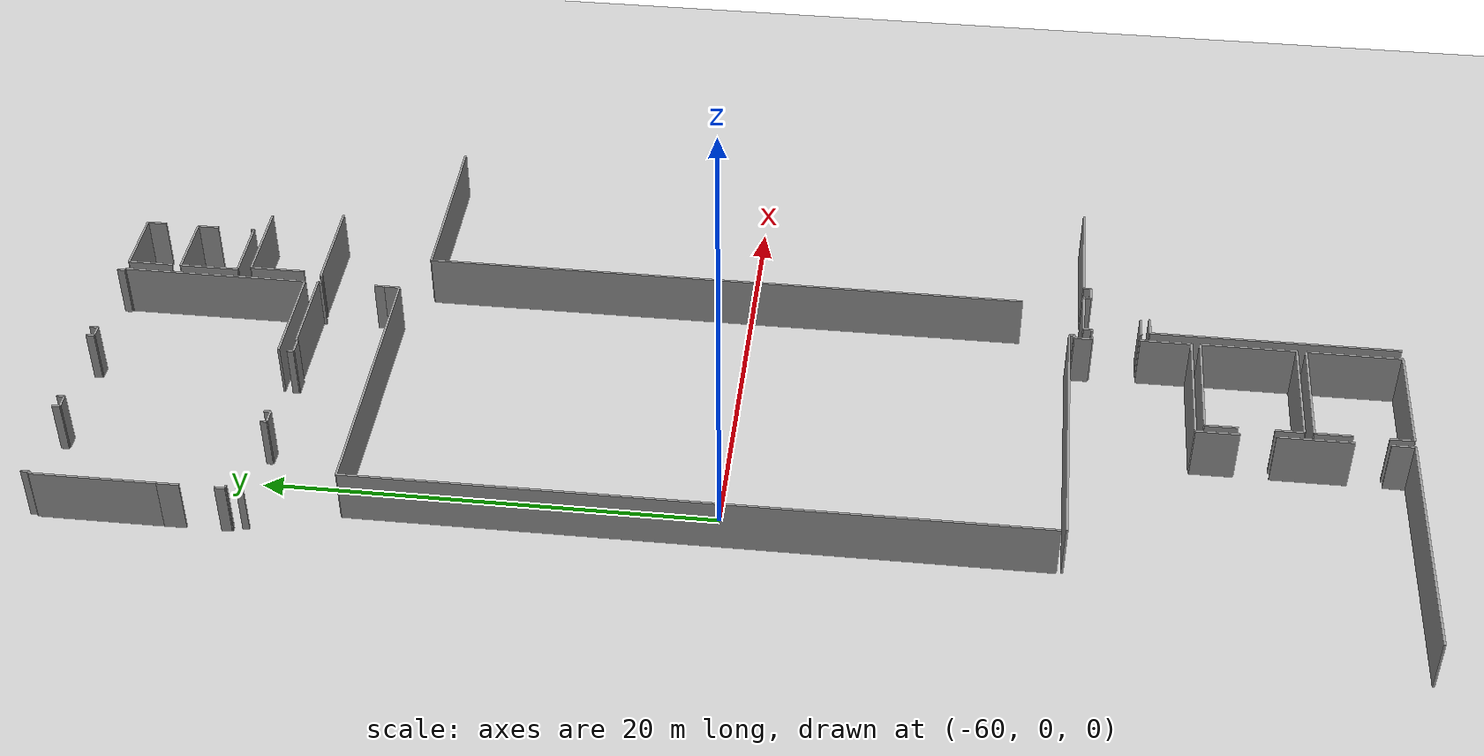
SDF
<sdf version="1.6">
 <world name="default">
  <model name="ground_plane">
   <static>1</static>
   <link name="link">
    <collision name="collision">
     <geometry><plane><normal>0 0 1</normal><size>100 100</size></plane></geometry>
     <surface><friction><ode><mu>100</mu><mu2>50</mu2></ode></friction></surface>
    </collision>
    <visual name="visual">
     <cast_shadows>0</cast_shadows>
     <geometry><plane><normal>0 0 1</normal><size>100 100</size></plane></geometry>
     <material>
      <script><uri>file://media/materials/scripts/gazebo.material</uri><name>Gazebo/Grey</name></script>
     </material>
    </visual>
   </link>
  </model>
  <model name="50010535_PLAN1">
   <static>1</static>
   <link name="Wall_57">
    <collision name="Wall_57_Collision">
     <geometry><box><size>5.55465905987 0.1 2.5</size></box></geometry>
     <pose>2.77732952993 0 1.25 0 0 0</pose>
    </collision>
    <visual name="Wall_57_Visual">
     <pose>2.77732952993 0 1.25 0 0 0</pose>
     <geometry><box><size>5.55465905987 0.1 2.5</size></box></geometry>
     <material>
      <script><uri>file://media/materials/scripts/gazebo.material</uri><name>Gazebo/Grey</name></script>
      <ambient>1 1 1 1</ambient>
     </material>
    </visual>
    <pose>39.6798027992 -5.94423232086 0 0 0 1.57079632679</pose>
   </link>
   <link name="Wall_58">
    <collision name="Wall_58_Collision">
     <geometry><box><size>0.109273647897 0.1 2.5</size></box></geometry>
     <pose>0.0546368239487 0 1.25 0 0 0</pose>
    </collision>
    <visual name="Wall_58_Visual">
     <pose>0.0546368239487 0 1.25 0 0 0</pose>
     <geometry><box><size>0.109273647897 0.1 2.5</size></box></geometry>
     <material>
      <script><uri>file://media/materials/scripts/gazebo.material</uri><name>Gazebo/Grey</name></script>
      <ambient>1 1 1 1</ambient>
     </material>
    </visual>
    <pose>39.6798027992 -0.389573260992 0 0 0 0.0</pose>
   </link>
   <link name="Wall_59">
    <collision name="Wall_59_Collision">
     <geometry><box><size>0.37534227429 0.1 2.5</size></box></geometry>
     <pose>0.187671137145 0 1.25 0 0 0</pose>
    </collision>
    <visual name="Wall_59_Visual">
     <pose>0.187671137145 0 1.25 0 0 0</pose>
     <geometry><box><size>0.37534227429 0.1 2.5</size></box></geometry>
     <material>
      <script><uri>file://media/materials/scripts/gazebo.material</uri><name>Gazebo/Grey</name></script>
      <ambient>1 1 1 1</ambient>
     </material>
    </visual>
    <pose>39.7890764471 -0.389573260992 0 0 0 1.57079632679</pose>
   </link>
   <link name="Wall_60">
    <collision name="Wall_60_Collision">
     <geometry><box><size>0.359840663774 0.1 2.5</size></box></geometry>
     <pose>0.179920331887 0 1.25 0 0 0</pose>
    </collision>
    <visual name="Wall_60_Visual">
     <pose>0.179920331887 0 1.25 0 0 0</pose>
     <geometry><box><size>0.359840663774 0.1 2.5</size></box></geometry>
     <material>
      <script><uri>file://media/materials/scripts/gazebo.material</uri><name>Gazebo/Grey</name></script>
      <ambient>1 1 1 1</ambient>
     </material>
    </visual>
    <pose>43.9872175244 -0.0142309867029 0 0 0 -1.57079632679</pose>
   </link>
   <link name="Wall_61">
    <collision name="Wall_61_Collision">
     <geometry><box><size>0.657420760722 0.1 2.5</size></box></geometry>
     <pose>0.328710380361 0 1.25 0 0 0</pose>
    </collision>
    <visual name="Wall_61_Visual">
     <pose>0.328710380361 0 1.25 0 0 0</pose>
     <geometry><box><size>0.657420760722 0.1 2.5</size></box></geometry>
     <material>
      <script><uri>file://media/materials/scripts/gazebo.material</uri><name>Gazebo/Grey</name></script>
      <ambient>1 1 1 1</ambient>
     </material>
    </visual>
    <pose>43.9872175244 -0.374071650477 0 0 0 0.0</pose>
   </link>
   <link name="Wall_62">
    <collision name="Wall_62_Collision">
     <geometry><box><size>0.351962796135 0.1 2.5</size></box></geometry>
     <pose>0.175981398067 0 1.25 0 0 0</pose>
    </collision>
    <visual name="Wall_62_Visual">
     <pose>0.175981398067 0 1.25 0 0 0</pose>
     <geometry><box><size>0.351962796135 0.1 2.5</size></box></geometry>
     <material>
      <script><uri>file://media/materials/scripts/gazebo.material</uri><name>Gazebo/Grey</name></script>
      <ambient>1 1 1 1</ambient>
     </material>
    </visual>
    <pose>44.6446382852 -0.374071650477 0 0 0 1.57079632679</pose>
   </link>
   <link name="Wall_63">
    <collision name="Wall_63_Collision">
     <geometry><box><size>0.377121147627 0.1 2.5</size></box></geometry>
     <pose>0.188560573814 0 1.25 0 0 0</pose>
    </collision>
    <visual name="Wall_63_Visual">
     <pose>0.188560573814 0 1.25 0 0 0</pose>
     <geometry><box><size>0.377121147627 0.1 2.5</size></box></geometry>
     <material>
      <script><uri>file://media/materials/scripts/gazebo.material</uri><name>Gazebo/Grey</name></script>
      <ambient>1 1 1 1</ambient>
     </material>
    </visual>
    <pose>48.8420169882 -0.022108854342 0 0 0 -1.57079632679</pose>
   </link>
   <link name="Wall_64">
    <collision name="Wall_64_Collision">
     <geometry><box><size>0.575592587181 0.1 2.5</size></box></geometry>
     <pose>0.28779629359 0 1.25 0 0 0</pose>
    </collision>
    <visual name="Wall_64_Visual">
     <pose>0.28779629359 0 1.25 0 0 0</pose>
     <geometry><box><size>0.575592587181 0.1 2.5</size></box></geometry>
     <material>
      <script><uri>file://media/materials/scripts/gazebo.material</uri><name>Gazebo/Grey</name></script>
      <ambient>1 1 1 1</ambient>
     </material>
    </visual>
    <pose>48.8420169882 -0.399230001969 0 0 0 0.0</pose>
   </link>
   <link name="Wall_65">
    <collision name="Wall_65_Collision">
     <geometry><box><size>0.373563400952 0.1 2.5</size></box></geometry>
     <pose>0.186781700476 0 1.25 0 0 0</pose>
    </collision>
    <visual name="Wall_65_Visual">
     <pose>0.186781700476 0 1.25 0 0 0</pose>
     <geometry><box><size>0.373563400952 0.1 2.5</size></box></geometry>
     <material>
      <script><uri>file://media/materials/scripts/gazebo.material</uri><name>Gazebo/Grey</name></script>
      <ambient>1 1 1 1</ambient>
     </material>
    </visual>
    <pose>49.4176095754 -0.399230001969 0 0 0 1.57079632679</pose>
   </link>
   <link name="Wall_66">
    <collision name="Wall_66_Collision">
     <geometry><box><size>0.351200421847 0.1 2.5</size></box></geometry>
     <pose>0.175600210924 0 1.25 0 0 0</pose>
    </collision>
    <visual name="Wall_66_Visual">
     <pose>0.175600210924 0 1.25 0 0 0</pose>
     <geometry><box><size>0.351200421847 0.1 2.5</size></box></geometry>
     <material>
      <script><uri>file://media/materials/scripts/gazebo.material</uri><name>Gazebo/Grey</name></script>
      <ambient>1 1 1 1</ambient>
     </material>
    </visual>
    <pose>53.6269321423 -0.0256666010178 0 0 0 -1.57079632679</pose>
   </link>
   <link name="Wall_67">
    <collision name="Wall_67_Collision">
     <geometry><box><size>0.0950426611945 0.1 2.5</size></box></geometry>
     <pose>0.0475213305973 0 1.25 0 0 0</pose>
    </collision>
    <visual name="Wall_67_Visual">
     <pose>0.0475213305973 0 1.25 0 0 0</pose>
     <geometry><box><size>0.0950426611945 0.1 2.5</size></box></geometry>
     <material>
      <script><uri>file://media/materials/scripts/gazebo.material</uri><name>Gazebo/Grey</name></script>
      <ambient>1 1 1 1</ambient>
     </material>
    </visual>
    <pose>53.6269321423 -0.376867022865 0 0 0 0.0</pose>
   </link>
   <link name="Wall_68">
    <collision name="Wall_68_Collision">
     <geometry><box><size>8.54011677033 0.1 2.5</size></box></geometry>
     <pose>4.27005838516 0 1.25 0 0 0</pose>
    </collision>
    <visual name="Wall_68_Visual">
     <pose>4.27005838516 0 1.25 0 0 0</pose>
     <geometry><box><size>8.54011677033 0.1 2.5</size></box></geometry>
     <material>
      <script><uri>file://media/materials/scripts/gazebo.material</uri><name>Gazebo/Grey</name></script>
      <ambient>1 1 1 1</ambient>
     </material>
    </visual>
    <pose>53.7219748035 -0.376867022865 0 0 0 -1.57079632679</pose>
   </link>
   <link name="Wall_69">
    <collision name="Wall_69_Collision">
     <geometry><box><size>4.92570027255 0.1 2.5</size></box></geometry>
     <pose>2.46285013627 0 1.25 0 0 0</pose>
    </collision>
    <visual name="Wall_69_Visual">
     <pose>2.46285013627 0 1.25 0 0 0</pose>
     <geometry><box><size>4.92570027255 0.1 2.5</size></box></geometry>
     <material>
      <script><uri>file://media/materials/scripts/gazebo.material</uri><name>Gazebo/Grey</name></script>
      <ambient>1 1 1 1</ambient>
     </material>
    </visual>
    <pose>53.7219748035 -8.91698379319 0 0 0 3.14159265359</pose>
   </link>
   <link name="Wall_70">
    <collision name="Wall_70_Collision">
     <geometry><box><size>0.166197594709 0.1 2.5</size></box></geometry>
     <pose>0.0830987973546 0 1.25 0 0 0</pose>
    </collision>
    <visual name="Wall_70_Visual">
     <pose>0.0830987973546 0 1.25 0 0 0</pose>
     <geometry><box><size>0.166197594709 0.1 2.5</size></box></geometry>
     <material>
      <script><uri>file://media/materials/scripts/gazebo.material</uri><name>Gazebo/Grey</name></script>
      <ambient>1 1 1 1</ambient>
     </material>
    </visual>
    <pose>39.8531158872 -8.91698379319 0 0 0 3.14159265359</pose>
   </link>
   <link name="Wall_71">
    <collision name="Wall_71_Collision">
     <geometry><box><size>0.466064814521 0.1 2.5</size></box></geometry>
     <pose>0.23303240726 0 1.25 0 0 0</pose>
    </collision>
    <visual name="Wall_71_Visual">
     <pose>0.23303240726 0 1.25 0 0 0</pose>
     <geometry><box><size>0.466064814521 0.1 2.5</size></box></geometry>
     <material>
      <script><uri>file://media/materials/scripts/gazebo.material</uri><name>Gazebo/Grey</name></script>
      <ambient>1 1 1 1</ambient>
     </material>
    </visual>
    <pose>39.6869182925 -8.91698379319 0 0 0 1.57079632679</pose>
   </link>
   <link name="Wall_72">
    <collision name="Wall_72_Collision">
     <geometry><box><size>0.986283870976 0.1 2.5</size></box></geometry>
     <pose>0.493141935488 0 1.25 0 0 0</pose>
    </collision>
    <visual name="Wall_72_Visual">
     <pose>0.493141935488 0 1.25 0 0 0</pose>
     <geometry><box><size>0.986283870976 0.1 2.5</size></box></geometry>
     <material>
      <script><uri>file://media/materials/scripts/gazebo.material</uri><name>Gazebo/Grey</name></script>
      <ambient>1 1 1 1</ambient>
     </material>
    </visual>
    <pose>39.6869182925 -6.93049052432 0 0 0 1.57801083703</pose>
   </link>
   <link name="Wall_103">
    <collision name="Wall_103_Collision">
     <geometry><box><size>0.30571208935 0.1 2.5</size></box></geometry>
     <pose>0.152856044675 0 1.25 0 0 0</pose>
    </collision>
    <visual name="Wall_103_Visual">
     <pose>0.152856044675 0 1.25 0 0 0</pose>
     <geometry><box><size>0.30571208935 0.1 2.5</size></box></geometry>
     <material>
      <script><uri>file://media/materials/scripts/gazebo.material</uri><name>Gazebo/Grey</name></script>
      <ambient>1 1 1 1</ambient>
     </material>
    </visual>
    <pose>39.8897098531 -9.62446713214 0 0 0 1.57079632679</pose>
   </link>
   <link name="Wall_104">
    <collision name="Wall_104_Collision">
     <geometry><box><size>0.289956354072 0.1 2.5</size></box></geometry>
     <pose>0.144978177036 0 1.25 0 0 0</pose>
    </collision>
    <visual name="Wall_104_Visual">
     <pose>0.144978177036 0 1.25 0 0 0</pose>
     <geometry><box><size>0.289956354072 0.1 2.5</size></box></geometry>
     <material>
      <script><uri>file://media/materials/scripts/gazebo.material</uri><name>Gazebo/Grey</name></script>
      <ambient>1 1 1 1</ambient>
     </material>
    </visual>
    <pose>43.9925541445 -9.31875504279 0 0 0 -1.57079632679</pose>
   </link>
   <link name="Wall_105">
    <collision name="Wall_105_Collision">
     <geometry><box><size>0.669618749325 0.1 2.5</size></box></geometry>
     <pose>0.334809374662 0 1.25 0 0 0</pose>
    </collision>
    <visual name="Wall_105_Visual">
     <pose>0.334809374662 0 1.25 0 0 0</pose>
     <geometry><box><size>0.669618749325 0.1 2.5</size></box></geometry>
     <material>
      <script><uri>file://media/materials/scripts/gazebo.material</uri><name>Gazebo/Grey</name></script>
      <ambient>1 1 1 1</ambient>
     </material>
    </visual>
    <pose>43.9925541445 -9.60871139686 0 0 0 0.0</pose>
   </link>
   <link name="Wall_106">
    <collision name="Wall_106_Collision">
     <geometry><box><size>0.289702229309 0.1 2.5</size></box></geometry>
     <pose>0.144851114655 0 1.25 0 0 0</pose>
    </collision>
    <visual name="Wall_106_Visual">
     <pose>0.144851114655 0 1.25 0 0 0</pose>
     <geometry><box><size>0.289702229309 0.1 2.5</size></box></geometry>
     <material>
      <script><uri>file://media/materials/scripts/gazebo.material</uri><name>Gazebo/Grey</name></script>
      <ambient>1 1 1 1</ambient>
     </material>
    </visual>
    <pose>44.6621728938 -9.60871139686 0 0 0 1.57079632679</pose>
   </link>
   <link name="Wall_107">
    <collision name="Wall_107_Collision">
     <geometry><box><size>0.293514100748 0.1 2.5</size></box></geometry>
     <pose>0.146757050374 0 1.25 0 0 0</pose>
    </collision>
    <visual name="Wall_107_Visual">
     <pose>0.146757050374 0 1.25 0 0 0</pose>
     <geometry><box><size>0.293514100748 0.1 2.5</size></box></geometry>
     <material>
      <script><uri>file://media/materials/scripts/gazebo.material</uri><name>Gazebo/Grey</name></script>
      <ambient>1 1 1 1</ambient>
     </material>
    </visual>
    <pose>48.7545980699 -9.31900916755 0 0 0 -1.57079632679</pose>
   </link>
   <link name="Wall_108">
    <collision name="Wall_108_Collision">
     <geometry><box><size>0.734420563776 0.1 2.5</size></box></geometry>
     <pose>0.367210281888 0 1.25 0 0 0</pose>
    </collision>
    <visual name="Wall_108_Visual">
     <pose>0.367210281888 0 1.25 0 0 0</pose>
     <geometry><box><size>0.734420563776 0.1 2.5</size></box></geometry>
     <material>
      <script><uri>file://media/materials/scripts/gazebo.material</uri><name>Gazebo/Grey</name></script>
      <ambient>1 1 1 1</ambient>
     </material>
    </visual>
    <pose>48.7545980699 -9.6125232683 0 0 0 0.0</pose>
   </link>
   <link name="Wall_109">
    <collision name="Wall_109_Collision">
     <geometry><box><size>0.0688678106516 0.1 2.5</size></box></geometry>
     <pose>0.0344339053258 0 1.25 0 0 0</pose>
    </collision>
    <visual name="Wall_109_Visual">
     <pose>0.0344339053258 0 1.25 0 0 0</pose>
     <geometry><box><size>0.0688678106516 0.1 2.5</size></box></geometry>
     <material>
      <script><uri>file://media/materials/scripts/gazebo.material</uri><name>Gazebo/Grey</name></script>
      <ambient>1 1 1 1</ambient>
     </material>
    </visual>
    <pose>49.4890186337 -9.6125232683 0 0 0 1.57079632679</pose>
   </link>
   <link name="Wall_110">
    <collision name="Wall_110_Collision">
     <geometry><box><size>4.26523001468 0.1 2.5</size></box></geometry>
     <pose>2.13261500734 0 1.25 0 0 0</pose>
    </collision>
    <visual name="Wall_110_Visual">
     <pose>2.13261500734 0 1.25 0 0 0</pose>
     <geometry><box><size>4.26523001468 0.1 2.5</size></box></geometry>
     <material>
      <script><uri>file://media/materials/scripts/gazebo.material</uri><name>Gazebo/Grey</name></script>
      <ambient>1 1 1 1</ambient>
     </material>
    </visual>
    <pose>49.4890186337 -9.54365545765 0 0 0 0.0</pose>
   </link>
   <link name="Wall_111">
    <collision name="Wall_111_Collision">
     <geometry><box><size>0.175854335686 0.1 2.5</size></box></geometry>
     <pose>0.087927167843 0 1.25 0 0 0</pose>
    </collision>
    <visual name="Wall_111_Visual">
     <pose>0.087927167843 0 1.25 0 0 0</pose>
     <geometry><box><size>0.175854335686 0.1 2.5</size></box></geometry>
     <material>
      <script><uri>file://media/materials/scripts/gazebo.material</uri><name>Gazebo/Grey</name></script>
      <ambient>1 1 1 1</ambient>
     </material>
    </visual>
    <pose>53.7542486484 -9.54365545765 0 0 0 -1.57079632679</pose>
   </link>
   <link name="Wall_112">
    <collision name="Wall_112_Collision">
     <geometry><box><size>0.461236444032 0.1 2.5</size></box></geometry>
     <pose>0.230618222016 0 1.25 0 0 0</pose>
    </collision>
    <visual name="Wall_112_Visual">
     <pose>0.230618222016 0 1.25 0 0 0</pose>
     <geometry><box><size>0.461236444032 0.1 2.5</size></box></geometry>
     <material>
      <script><uri>file://media/materials/scripts/gazebo.material</uri><name>Gazebo/Grey</name></script>
      <ambient>1 1 1 1</ambient>
     </material>
    </visual>
    <pose>53.7542486484 -12.2015463492 0 0 0 -1.57079632679</pose>
   </link>
   <link name="Wall_113">
    <collision name="Wall_113_Collision">
     <geometry><box><size>0.711295210384 0.1 2.5</size></box></geometry>
     <pose>0.355647605192 0 1.25 0 0 0</pose>
    </collision>
    <visual name="Wall_113_Visual">
     <pose>0.355647605192 0 1.25 0 0 0</pose>
     <geometry><box><size>0.711295210384 0.1 2.5</size></box></geometry>
     <material>
      <script><uri>file://media/materials/scripts/gazebo.material</uri><name>Gazebo/Grey</name></script>
      <ambient>1 1 1 1</ambient>
     </material>
    </visual>
    <pose>53.7542486484 -12.6627827932 0 0 0 -1.57079632679</pose>
   </link>
   <link name="Wall_114">
    <collision name="Wall_114_Collision">
     <geometry><box><size>12.7087793752 0.1 2.5</size></box></geometry>
     <pose>6.35438968762 0 1.25 0 0 0</pose>
    </collision>
    <visual name="Wall_114_Visual">
     <pose>6.35438968762 0 1.25 0 0 0</pose>
     <geometry><box><size>12.7087793752 0.1 2.5</size></box></geometry>
     <material>
      <script><uri>file://media/materials/scripts/gazebo.material</uri><name>Gazebo/Grey</name></script>
      <ambient>1 1 1 1</ambient>
     </material>
    </visual>
    <pose>53.7542486484 -13.3740780036 0 0 0 3.14159265359</pose>
   </link>
   <link name="Wall_115">
    <collision name="Wall_115_Collision">
     <geometry><box><size>30.5673970636 0.1 2.5</size></box></geometry>
     <pose>15.2836985318 0 1.25 0 0 0</pose>
    </collision>
    <visual name="Wall_115_Visual">
     <pose>15.2836985318 0 1.25 0 0 0</pose>
     <geometry><box><size>30.5673970636 0.1 2.5</size></box></geometry>
     <material>
      <script><uri>file://media/materials/scripts/gazebo.material</uri><name>Gazebo/Grey</name></script>
      <ambient>1 1 1 1</ambient>
     </material>
    </visual>
    <pose>41.0454692731 -13.3740780036 0 0 0 -1.57079632679</pose>
   </link>
   <link name="Wall_169">
    <collision name="Wall_169_Collision">
     <geometry><box><size>5.48299587683 0.1 2.5</size></box></geometry>
     <pose>2.74149793841 0 1.25 0 0 0</pose>
    </collision>
    <visual name="Wall_169_Visual">
     <pose>2.74149793841 0 1.25 0 0 0</pose>
     <geometry><box><size>5.48299587683 0.1 2.5</size></box></geometry>
     <material>
      <script><uri>file://media/materials/scripts/gazebo.material</uri><name>Gazebo/Grey</name></script>
      <ambient>1 1 1 1</ambient>
     </material>
    </visual>
    <pose>48.2394871762 -50.0249677579 0 0 0 0.0</pose>
   </link>
   <link name="Wall_170">
    <collision name="Wall_170_Collision">
     <geometry><box><size>4.27819037757 0.1 2.5</size></box></geometry>
     <pose>2.13909518878 0 1.25 0 0 0</pose>
    </collision>
    <visual name="Wall_170_Visual">
     <pose>2.13909518878 0 1.25 0 0 0</pose>
     <geometry><box><size>4.27819037757 0.1 2.5</size></box></geometry>
     <material>
      <script><uri>file://media/materials/scripts/gazebo.material</uri><name>Gazebo/Grey</name></script>
      <ambient>1 1 1 1</ambient>
     </material>
    </visual>
    <pose>53.7224830531 -50.0249677579 0 0 0 -1.57079632679</pose>
   </link>
   <link name="Wall_171">
    <collision name="Wall_171_Collision">
     <geometry><box><size>5.4662236425 0.1 2.5</size></box></geometry>
     <pose>2.73311182125 0 1.25 0 0 0</pose>
    </collision>
    <visual name="Wall_171_Visual">
     <pose>2.73311182125 0 1.25 0 0 0</pose>
     <geometry><box><size>5.4662236425 0.1 2.5</size></box></geometry>
     <material>
      <script><uri>file://media/materials/scripts/gazebo.material</uri><name>Gazebo/Grey</name></script>
      <ambient>1 1 1 1</ambient>
     </material>
    </visual>
    <pose>53.7224830531 -54.3031581355 0 0 0 3.14159265359</pose>
   </link>
   <link name="Wall_172">
    <collision name="Wall_172_Collision">
     <geometry><box><size>1.26249182036 0.1 2.5</size></box></geometry>
     <pose>0.63124591018 0 1.25 0 0 0</pose>
    </collision>
    <visual name="Wall_172_Visual">
     <pose>0.63124591018 0 1.25 0 0 0</pose>
     <geometry><box><size>1.26249182036 0.1 2.5</size></box></geometry>
     <material>
      <script><uri>file://media/materials/scripts/gazebo.material</uri><name>Gazebo/Grey</name></script>
      <ambient>1 1 1 1</ambient>
     </material>
    </visual>
    <pose>48.2562594106 -54.3031581355 0 0 0 1.57079632679</pose>
   </link>
   <link name="Wall_173">
    <collision name="Wall_173_Collision">
     <geometry><box><size>1.45445272504 0.1 2.5</size></box></geometry>
     <pose>0.727226362519 0 1.25 0 0 0</pose>
    </collision>
    <visual name="Wall_173_Visual">
     <pose>0.727226362519 0 1.25 0 0 0</pose>
     <geometry><box><size>1.45445272504 0.1 2.5</size></box></geometry>
     <material>
      <script><uri>file://media/materials/scripts/gazebo.material</uri><name>Gazebo/Grey</name></script>
      <ambient>1 1 1 1</ambient>
     </material>
    </visual>
    <pose>48.2562594106 -51.479323774 0 0 0 1.58232822865</pose>
   </link>
   <link name="Wall_174">
    <collision name="Wall_174_Collision">
     <geometry><box><size>1.05970025984 0.1 2.5</size></box></geometry>
     <pose>0.529850129921 0 1.25 0 0 0</pose>
    </collision>
    <visual name="Wall_174_Visual">
     <pose>0.529850129921 0 1.25 0 0 0</pose>
     <geometry><box><size>1.05970025984 0.1 2.5</size></box></geometry>
     <material>
      <script><uri>file://media/materials/scripts/gazebo.material</uri><name>Gazebo/Grey</name></script>
      <ambient>1 1 1 1</ambient>
     </material>
    </visual>
    <pose>48.245077921 -58.9838821369 0 0 0 1.57079632679</pose>
   </link>
   <link name="Wall_175">
    <collision name="Wall_175_Collision">
     <geometry><box><size>1.67493630998 0.1 2.5</size></box></geometry>
     <pose>0.837468154991 0 1.25 0 0 0</pose>
    </collision>
    <visual name="Wall_175_Visual">
     <pose>0.837468154991 0 1.25 0 0 0</pose>
     <geometry><box><size>1.67493630998 0.1 2.5</size></box></geometry>
     <material>
      <script><uri>file://media/materials/scripts/gazebo.material</uri><name>Gazebo/Grey</name></script>
      <ambient>1 1 1 1</ambient>
     </material>
    </visual>
    <pose>48.245077921 -56.3943508065 0 0 0 1.57079632679</pose>
   </link>
   <link name="Wall_176">
    <collision name="Wall_176_Collision">
     <geometry><box><size>5.46063289772 0.1 2.5</size></box></geometry>
     <pose>2.73031644886 0 1.25 0 0 0</pose>
    </collision>
    <visual name="Wall_176_Visual">
     <pose>2.73031644886 0 1.25 0 0 0</pose>
     <geometry><box><size>5.46063289772 0.1 2.5</size></box></geometry>
     <material>
      <script><uri>file://media/materials/scripts/gazebo.material</uri><name>Gazebo/Grey</name></script>
      <ambient>1 1 1 1</ambient>
     </material>
    </visual>
    <pose>48.245077921 -54.7194144965 0 0 0 0.0</pose>
   </link>
   <link name="Wall_177">
    <collision name="Wall_177_Collision">
     <geometry><box><size>4.26090989371 0.1 2.5</size></box></geometry>
     <pose>2.13045494686 0 1.25 0 0 0</pose>
    </collision>
    <visual name="Wall_177_Visual">
     <pose>2.13045494686 0 1.25 0 0 0</pose>
     <geometry><box><size>4.26090989371 0.1 2.5</size></box></geometry>
     <material>
      <script><uri>file://media/materials/scripts/gazebo.material</uri><name>Gazebo/Grey</name></script>
      <ambient>1 1 1 1</ambient>
     </material>
    </visual>
    <pose>53.7057108187 -54.7194144965 0 0 0 -1.57079632679</pose>
   </link>
   <link name="Wall_178">
    <collision name="Wall_178_Collision">
     <geometry><box><size>5.4606340567 0.1 2.5</size></box></geometry>
     <pose>2.73031702835 0 1.25 0 0 0</pose>
    </collision>
    <visual name="Wall_178_Visual">
     <pose>2.73031702835 0 1.25 0 0 0</pose>
     <geometry><box><size>5.4606340567 0.1 2.5</size></box></geometry>
     <material>
      <script><uri>file://media/materials/scripts/gazebo.material</uri><name>Gazebo/Grey</name></script>
      <ambient>1 1 1 1</ambient>
     </material>
    </visual>
    <pose>53.7057108187 -58.9803243903 0 0 0 -3.14094112725</pose>
   </link>
   <link name="Wall_188">
    <collision name="Wall_188_Collision">
     <geometry><box><size>12.6892117685 0.1 2.5</size></box></geometry>
     <pose>6.34460588426 0 1.25 0 0 0</pose>
    </collision>
    <visual name="Wall_188_Visual">
     <pose>6.34460588426 0 1.25 0 0 0</pose>
     <geometry><box><size>12.6892117685 0.1 2.5</size></box></geometry>
     <material>
      <script><uri>file://media/materials/scripts/gazebo.material</uri><name>Gazebo/Grey</name></script>
      <ambient>1 1 1 1</ambient>
     </material>
    </visual>
    <pose>41.0523306417 -44.1676461059 0 0 0 0.0</pose>
   </link>
   <link name="Wall_189">
    <collision name="Wall_189_Collision">
     <geometry><box><size>0.219817919608 0.1 2.5</size></box></geometry>
     <pose>0.109908959804 0 1.25 0 0 0</pose>
    </collision>
    <visual name="Wall_189_Visual">
     <pose>0.109908959804 0 1.25 0 0 0</pose>
     <geometry><box><size>0.219817919608 0.1 2.5</size></box></geometry>
     <material>
      <script><uri>file://media/materials/scripts/gazebo.material</uri><name>Gazebo/Grey</name></script>
      <ambient>1 1 1 1</ambient>
     </material>
    </visual>
    <pose>53.7415424102 -44.1676461059 0 0 0 -1.57079632679</pose>
   </link>
   <link name="Wall_190">
    <collision name="Wall_190_Collision">
     <geometry><box><size>0.181953329987 0.1 2.5</size></box></geometry>
     <pose>0.0909766649937 0 1.25 0 0 0</pose>
    </collision>
    <visual name="Wall_190_Visual">
     <pose>0.0909766649937 0 1.25 0 0 0</pose>
     <geometry><box><size>0.181953329987 0.1 2.5</size></box></geometry>
     <material>
      <script><uri>file://media/materials/scripts/gazebo.material</uri><name>Gazebo/Grey</name></script>
      <ambient>1 1 1 1</ambient>
     </material>
    </visual>
    <pose>53.7415424102 -44.3874640255 0 0 0 3.14159265359</pose>
   </link>
   <link name="Wall_191">
    <collision name="Wall_191_Collision">
     <geometry><box><size>0.804304873478 0.1 2.5</size></box></geometry>
     <pose>0.402152436739 0 1.25 0 0 0</pose>
    </collision>
    <visual name="Wall_191_Visual">
     <pose>0.402152436739 0 1.25 0 0 0</pose>
     <geometry><box><size>0.804304873478 0.1 2.5</size></box></geometry>
     <material>
      <script><uri>file://media/materials/scripts/gazebo.material</uri><name>Gazebo/Grey</name></script>
      <ambient>1 1 1 1</ambient>
     </material>
    </visual>
    <pose>53.5595890803 -44.3874640255 0 0 0 -1.57079632679</pose>
   </link>
   <link name="Wall_192">
    <collision name="Wall_192_Collision">
     <geometry><box><size>0.147646487043 0.1 2.5</size></box></geometry>
     <pose>0.0738232435214 0 1.25 0 0 0</pose>
    </collision>
    <visual name="Wall_192_Visual">
     <pose>0.0738232435214 0 1.25 0 0 0</pose>
     <geometry><box><size>0.147646487043 0.1 2.5</size></box></geometry>
     <material>
      <script><uri>file://media/materials/scripts/gazebo.material</uri><name>Gazebo/Grey</name></script>
      <ambient>1 1 1 1</ambient>
     </material>
    </visual>
    <pose>53.5595890803 -45.1917688989 0 0 0 0.0</pose>
   </link>
   <link name="Wall_193">
    <collision name="Wall_193_Collision">
     <geometry><box><size>2.28254861724 0.1 2.5</size></box></geometry>
     <pose>1.14127430862 0 1.25 0 0 0</pose>
    </collision>
    <visual name="Wall_193_Visual">
     <pose>1.14127430862 0 1.25 0 0 0</pose>
     <geometry><box><size>2.28254861724 0.1 2.5</size></box></geometry>
     <material>
      <script><uri>file://media/materials/scripts/gazebo.material</uri><name>Gazebo/Grey</name></script>
      <ambient>1 1 1 1</ambient>
     </material>
    </visual>
    <pose>53.7072355673 -47.343951513 0 0 0 -1.57079632679</pose>
   </link>
   <link name="Wall_194">
    <collision name="Wall_194_Collision">
     <geometry><box><size>5.87663513402 0.1 2.5</size></box></geometry>
     <pose>2.93831756701 0 1.25 0 0 0</pose>
    </collision>
    <visual name="Wall_194_Visual">
     <pose>2.93831756701 0 1.25 0 0 0</pose>
     <geometry><box><size>5.87663513402 0.1 2.5</size></box></geometry>
     <material>
      <script><uri>file://media/materials/scripts/gazebo.material</uri><name>Gazebo/Grey</name></script>
      <ambient>1 1 1 1</ambient>
     </material>
    </visual>
    <pose>53.7072355673 -49.6265001302 0 0 0 3.14159265359</pose>
   </link>
   <link name="Wall_195">
    <collision name="Wall_195_Collision">
     <geometry><box><size>1.91787958298 0.1 2.5</size></box></geometry>
     <pose>0.958939791491 0 1.25 0 0 0</pose>
    </collision>
    <visual name="Wall_195_Visual">
     <pose>0.958939791491 0 1.25 0 0 0</pose>
     <geometry><box><size>1.91787958298 0.1 2.5</size></box></geometry>
     <material>
      <script><uri>file://media/materials/scripts/gazebo.material</uri><name>Gazebo/Grey</name></script>
      <ambient>1 1 1 1</ambient>
     </material>
    </visual>
    <pose>47.8306004333 -49.6265001302 0 0 0 -1.57079632679</pose>
   </link>
   <link name="Wall_196">
    <collision name="Wall_196_Collision">
     <geometry><box><size>3.35190561806 0.1 2.5</size></box></geometry>
     <pose>1.67595280903 0 1.25 0 0 0</pose>
    </collision>
    <visual name="Wall_196_Visual">
     <pose>1.67595280903 0 1.25 0 0 0</pose>
     <geometry><box><size>3.35190561806 0.1 2.5</size></box></geometry>
     <material>
      <script><uri>file://media/materials/scripts/gazebo.material</uri><name>Gazebo/Grey</name></script>
      <ambient>1 1 1 1</ambient>
     </material>
    </visual>
    <pose>47.8306004333 -53.0866628971 0 0 0 -1.57079632679</pose>
   </link>
   <link name="Wall_197">
    <collision name="Wall_197_Collision">
     <geometry><box><size>1.02717229024 0.1 2.5</size></box></geometry>
     <pose>0.513586145118 0 1.25 0 0 0</pose>
    </collision>
    <visual name="Wall_197_Visual">
     <pose>0.513586145118 0 1.25 0 0 0</pose>
     <geometry><box><size>1.02717229024 0.1 2.5</size></box></geometry>
     <material>
      <script><uri>file://media/materials/scripts/gazebo.material</uri><name>Gazebo/Grey</name></script>
      <ambient>1 1 1 1</ambient>
     </material>
    </visual>
    <pose>47.8306004333 -57.9602675934 0 0 0 -1.57079632679</pose>
   </link>
   <link name="Wall_198">
    <collision name="Wall_198_Collision">
     <geometry><box><size>11.589382364 0.1 2.5</size></box></geometry>
     <pose>5.79469118199 0 1.25 0 0 0</pose>
    </collision>
    <visual name="Wall_198_Visual">
     <pose>5.79469118199 0 1.25 0 0 0</pose>
     <geometry><box><size>11.589382364 0.1 2.5</size></box></geometry>
     <material>
      <script><uri>file://media/materials/scripts/gazebo.material</uri><name>Gazebo/Grey</name></script>
      <ambient>1 1 1 1</ambient>
     </material>
    </visual>
    <pose>47.8306004333 -58.9874398836 0 0 0 -3.13961918833</pose>
   </link>
   <link name="Wall_199">
    <collision name="Wall_199_Collision">
     <geometry><box><size>2.06018945001 0.1 2.5</size></box></geometry>
     <pose>1.03009472501 0 1.25 0 0 0</pose>
    </collision>
    <visual name="Wall_199_Visual">
     <pose>1.03009472501 0 1.25 0 0 0</pose>
     <geometry><box><size>2.06018945001 0.1 2.5</size></box></geometry>
     <material>
      <script><uri>file://media/materials/scripts/gazebo.material</uri><name>Gazebo/Grey</name></script>
      <ambient>1 1 1 1</ambient>
     </material>
    </visual>
    <pose>54.2624981735 -2.46526432152 0 0 0 1.57079632679</pose>
   </link>
   <link name="Wall_200">
    <collision name="Wall_200_Collision">
     <geometry><box><size>3.04416053061 0.1 2.5</size></box></geometry>
     <pose>1.52208026531 0 1.25 0 0 0</pose>
    </collision>
    <visual name="Wall_200_Visual">
     <pose>1.52208026531 0 1.25 0 0 0</pose>
     <geometry><box><size>3.04416053061 0.1 2.5</size></box></geometry>
     <material>
      <script><uri>file://media/materials/scripts/gazebo.material</uri><name>Gazebo/Grey</name></script>
      <ambient>1 1 1 1</ambient>
     </material>
    </visual>
    <pose>54.2624981735 -0.405074871508 0 0 0 0.0</pose>
   </link>
   <link name="Wall_201">
    <collision name="Wall_201_Collision">
     <geometry><box><size>0.9120537728 0.1 2.5</size></box></geometry>
     <pose>0.4560268864 0 1.25 0 0 0</pose>
    </collision>
    <visual name="Wall_201_Visual">
     <pose>0.4560268864 0 1.25 0 0 0</pose>
     <geometry><box><size>0.9120537728 0.1 2.5</size></box></geometry>
     <material>
      <script><uri>file://media/materials/scripts/gazebo.material</uri><name>Gazebo/Grey</name></script>
      <ambient>1 1 1 1</ambient>
     </material>
    </visual>
    <pose>57.3066587041 -0.405074871508 0 0 0 -1.57079632679</pose>
   </link>
   <link name="Wall_203">
    <collision name="Wall_203_Collision">
     <geometry><box><size>2.7158313374 0.1 2.5</size></box></geometry>
     <pose>1.3579156687 0 1.25 0 0 0</pose>
    </collision>
    <visual name="Wall_203_Visual">
     <pose>1.3579156687 0 1.25 0 0 0</pose>
     <geometry><box><size>2.7158313374 0.1 2.5</size></box></geometry>
     <material>
      <script><uri>file://media/materials/scripts/gazebo.material</uri><name>Gazebo/Grey</name></script>
      <ambient>1 1 1 1</ambient>
     </material>
    </visual>
    <pose>54.2691054173 -5.58820352852 0 0 0 1.57079632679</pose>
   </link>
   <link name="Wall_204">
    <collision name="Wall_204_Collision">
     <geometry><box><size>3.00909131338 0.1 2.5</size></box></geometry>
     <pose>1.50454565669 0 1.25 0 0 0</pose>
    </collision>
    <visual name="Wall_204_Visual">
     <pose>1.50454565669 0 1.25 0 0 0</pose>
     <geometry><box><size>3.00909131338 0.1 2.5</size></box></geometry>
     <material>
      <script><uri>file://media/materials/scripts/gazebo.material</uri><name>Gazebo/Grey</name></script>
      <ambient>1 1 1 1</ambient>
     </material>
    </visual>
    <pose>54.2691054173 -2.87237219113 0 0 0 0.0</pose>
   </link>
   <link name="Wall_205">
    <collision name="Wall_205_Collision">
     <geometry><box><size>0.986258203465 0.1 2.5</size></box></geometry>
     <pose>0.493129101732 0 1.25 0 0 0</pose>
    </collision>
    <visual name="Wall_205_Visual">
     <pose>0.493129101732 0 1.25 0 0 0</pose>
     <geometry><box><size>0.986258203465 0.1 2.5</size></box></geometry>
     <material>
      <script><uri>file://media/materials/scripts/gazebo.material</uri><name>Gazebo/Grey</name></script>
      <ambient>1 1 1 1</ambient>
     </material>
    </visual>
    <pose>57.2781967307 -2.87237219113 0 0 0 -1.57079632679</pose>
   </link>
   <link name="Wall_206">
    <collision name="Wall_206_Collision">
     <geometry><box><size>0.131128377477 0.1 2.5</size></box></geometry>
     <pose>0.0655641887385 0 1.25 0 0 0</pose>
    </collision>
    <visual name="Wall_206_Visual">
     <pose>0.0655641887385 0 1.25 0 0 0</pose>
     <geometry><box><size>0.131128377477 0.1 2.5</size></box></geometry>
     <material>
      <script><uri>file://media/materials/scripts/gazebo.material</uri><name>Gazebo/Grey</name></script>
      <ambient>1 1 1 1</ambient>
     </material>
    </visual>
    <pose>57.2781967307 -5.45402565389 0 0 0 -1.57079632679</pose>
   </link>
   <link name="Wall_207">
    <collision name="Wall_207_Collision">
     <geometry><box><size>3.0090928586 0.1 2.5</size></box></geometry>
     <pose>1.5045464293 0 1.25 0 0 0</pose>
    </collision>
    <visual name="Wall_207_Visual">
     <pose>1.5045464293 0 1.25 0 0 0</pose>
     <geometry><box><size>3.0090928586 0.1 2.5</size></box></geometry>
     <material>
      <script><uri>file://media/materials/scripts/gazebo.material</uri><name>Gazebo/Grey</name></script>
      <ambient>1 1 1 1</ambient>
     </material>
    </visual>
    <pose>57.2781967307 -5.58515403137 0 0 0 -3.14057922602</pose>
   </link>
   <link name="Wall_216">
    <collision name="Wall_216_Collision">
     <geometry><box><size>2.52244239309 0.1 2.5</size></box></geometry>
     <pose>1.26122119655 0 1.25 0 0 0</pose>
    </collision>
    <visual name="Wall_216_Visual">
     <pose>1.26122119655 0 1.25 0 0 0</pose>
     <geometry><box><size>2.52244239309 0.1 2.5</size></box></geometry>
     <material>
      <script><uri>file://media/materials/scripts/gazebo.material</uri><name>Gazebo/Grey</name></script>
      <ambient>1 1 1 1</ambient>
     </material>
    </visual>
    <pose>54.4487716244 -8.71165098505 0 0 0 1.57079632679</pose>
   </link>
   <link name="Wall_217">
    <collision name="Wall_217_Collision">
     <geometry><box><size>3.99153764541 0.1 2.5</size></box></geometry>
     <pose>1.9957688227 0 1.25 0 0 0</pose>
    </collision>
    <visual name="Wall_217_Visual">
     <pose>1.9957688227 0 1.25 0 0 0</pose>
     <geometry><box><size>3.99153764541 0.1 2.5</size></box></geometry>
     <material>
      <script><uri>file://media/materials/scripts/gazebo.material</uri><name>Gazebo/Grey</name></script>
      <ambient>1 1 1 1</ambient>
     </material>
    </visual>
    <pose>54.4487716244 -6.18920859196 0 0 0 0.0</pose>
   </link>
   <link name="Wall_221">
    <collision name="Wall_221_Collision">
     <geometry><box><size>27.5908337198 0.1 2.5</size></box></geometry>
     <pose>13.7954168599 0 1.25 0 0 0</pose>
    </collision>
    <visual name="Wall_221_Visual">
     <pose>13.7954168599 0 1.25 0 0 0</pose>
     <geometry><box><size>27.5908337198 0.1 2.5</size></box></geometry>
     <material>
      <script><uri>file://media/materials/scripts/gazebo.material</uri><name>Gazebo/Grey</name></script>
      <ambient>1 1 1 1</ambient>
     </material>
    </visual>
    <pose>55.9219328729 -42.024866108 0 0 0 1.57079632679</pose>
   </link>
   <link name="Wall_222">
    <collision name="Wall_222_Collision">
     <geometry><box><size>8.40898839285 0.1 2.5</size></box></geometry>
     <pose>4.20449419643 0 1.25 0 0 0</pose>
    </collision>
    <visual name="Wall_222_Visual">
     <pose>4.20449419643 0 1.25 0 0 0</pose>
     <geometry><box><size>8.40898839285 0.1 2.5</size></box></geometry>
     <material>
      <script><uri>file://media/materials/scripts/gazebo.material</uri><name>Gazebo/Grey</name></script>
      <ambient>1 1 1 1</ambient>
     </material>
    </visual>
    <pose>55.9219328729 -14.4340323882 0 0 0 0.0</pose>
   </link>
   <link name="Wall_229">
    <collision name="Wall_229_Collision">
     <geometry><box><size>0.087418918318 0.1 2.5</size></box></geometry>
     <pose>0.043709459159 0 1.25 0 0 0</pose>
    </collision>
    <visual name="Wall_229_Visual">
     <pose>0.043709459159 0 1.25 0 0 0</pose>
     <geometry><box><size>0.087418918318 0.1 2.5</size></box></geometry>
     <material>
      <script><uri>file://media/materials/scripts/gazebo.material</uri><name>Gazebo/Grey</name></script>
      <ambient>1 1 1 1</ambient>
     </material>
    </visual>
    <pose>54.2004917314 -9.64886310934 0 0 0 1.57079632679</pose>
   </link>
   <link name="Wall_230">
    <collision name="Wall_230_Collision">
     <geometry><box><size>4.68504412241 0.1 2.5</size></box></geometry>
     <pose>2.34252206121 0 1.25 0 0 0</pose>
    </collision>
    <visual name="Wall_230_Visual">
     <pose>2.34252206121 0 1.25 0 0 0</pose>
     <geometry><box><size>4.68504412241 0.1 2.5</size></box></geometry>
     <material>
      <script><uri>file://media/materials/scripts/gazebo.material</uri><name>Gazebo/Grey</name></script>
      <ambient>1 1 1 1</ambient>
     </material>
    </visual>
    <pose>54.2004917314 -9.56144419103 0 0 0 0.0</pose>
   </link>
   <link name="Wall_241">
    <collision name="Wall_241_Collision">
     <geometry><box><size>11.2028360324 0.1 2.5</size></box></geometry>
     <pose>5.60141801618 0 1.25 0 0 0</pose>
    </collision>
    <visual name="Wall_241_Visual">
     <pose>5.60141801618 0 1.25 0 0 0</pose>
     <geometry><box><size>11.2028360324 0.1 2.5</size></box></geometry>
     <material>
      <script><uri>file://media/materials/scripts/gazebo.material</uri><name>Gazebo/Grey</name></script>
      <ambient>1 1 1 1</ambient>
     </material>
    </visual>
    <pose>54.2624981735 -58.9887105074 0 0 0 1.57079632679</pose>
   </link>
   <link name="Wall_242">
    <collision name="Wall_242_Collision">
     <geometry><box><size>0.974060214862 0.1 2.5</size></box></geometry>
     <pose>0.487030107431 0 1.25 0 0 0</pose>
    </collision>
    <visual name="Wall_242_Visual">
     <pose>0.487030107431 0 1.25 0 0 0</pose>
     <geometry><box><size>0.974060214862 0.1 2.5</size></box></geometry>
     <material>
      <script><uri>file://media/materials/scripts/gazebo.material</uri><name>Gazebo/Grey</name></script>
      <ambient>1 1 1 1</ambient>
     </material>
    </visual>
    <pose>54.2624981735 -47.7858744751 0 0 0 0.0</pose>
   </link>
   <link name="Wall_246">
    <collision name="Wall_246_Collision">
     <geometry><box><size>2.20986893515 0.1 2.5</size></box></geometry>
     <pose>1.10493446758 0 1.25 0 0 0</pose>
    </collision>
    <visual name="Wall_246_Visual">
     <pose>1.10493446758 0 1.25 0 0 0</pose>
     <geometry><box><size>2.20986893515 0.1 2.5</size></box></geometry>
     <material>
      <script><uri>file://media/materials/scripts/gazebo.material</uri><name>Gazebo/Grey</name></script>
      <ambient>1 1 1 1</ambient>
     </material>
    </visual>
    <pose>54.2541120563 -44.7996543903 0 0 0 0.0</pose>
   </link>
   <link name="Wall_247">
    <collision name="Wall_247_Collision">
     <geometry><box><size>0.332395189418 0.1 2.5</size></box></geometry>
     <pose>0.166197594709 0 1.25 0 0 0</pose>
    </collision>
    <visual name="Wall_247_Visual">
     <pose>0.166197594709 0 1.25 0 0 0</pose>
     <geometry><box><size>0.332395189418 0.1 2.5</size></box></geometry>
     <material>
      <script><uri>file://media/materials/scripts/gazebo.material</uri><name>Gazebo/Grey</name></script>
      <ambient>1 1 1 1</ambient>
     </material>
    </visual>
    <pose>56.4639809915 -44.7996543903 0 0 0 -1.57079632679</pose>
   </link>
   <link name="Wall_248">
    <collision name="Wall_248_Collision">
     <geometry><box><size>0.714344707534 0.1 2.5</size></box></geometry>
     <pose>0.357172353767 0 1.25 0 0 0</pose>
    </collision>
    <visual name="Wall_248_Visual">
     <pose>0.357172353767 0 1.25 0 0 0</pose>
     <geometry><box><size>0.714344707534 0.1 2.5</size></box></geometry>
     <material>
      <script><uri>file://media/materials/scripts/gazebo.material</uri><name>Gazebo/Grey</name></script>
      <ambient>1 1 1 1</ambient>
     </material>
    </visual>
    <pose>56.4639809915 -45.1320495797 0 0 0 0.0</pose>
   </link>
   <link name="Wall_249">
    <collision name="Wall_249_Collision">
     <geometry><box><size>0.332395189418 0.1 2.5</size></box></geometry>
     <pose>0.166197594709 0 1.25 0 0 0</pose>
    </collision>
    <visual name="Wall_249_Visual">
     <pose>0.166197594709 0 1.25 0 0 0</pose>
     <geometry><box><size>0.332395189418 0.1 2.5</size></box></geometry>
     <material>
      <script><uri>file://media/materials/scripts/gazebo.material</uri><name>Gazebo/Grey</name></script>
      <ambient>1 1 1 1</ambient>
     </material>
    </visual>
    <pose>57.178325699 -45.1320495797 0 0 0 1.57079632679</pose>
   </link>
   <link name="Wall_250">
    <collision name="Wall_250_Collision">
     <geometry><box><size>5.50205523402 0.1 2.5</size></box></geometry>
     <pose>2.75102761701 0 1.25 0 0 0</pose>
    </collision>
    <visual name="Wall_250_Visual">
     <pose>2.75102761701 0 1.25 0 0 0</pose>
     <geometry><box><size>5.50205523402 0.1 2.5</size></box></geometry>
     <material>
      <script><uri>file://media/materials/scripts/gazebo.material</uri><name>Gazebo/Grey</name></script>
      <ambient>1 1 1 1</ambient>
     </material>
    </visual>
    <pose>57.178325699 -44.7996543903 0 0 0 0.0</pose>
   </link>
   <link name="Wall_257">
    <collision name="Wall_257_Collision">
     <geometry><box><size>1.10417209329 0.1 2.5</size></box></geometry>
     <pose>0.552086046645 0 1.25 0 0 0</pose>
    </collision>
    <visual name="Wall_257_Visual">
     <pose>0.552086046645 0 1.25 0 0 0</pose>
     <geometry><box><size>1.10417209329 0.1 2.5</size></box></geometry>
     <material>
      <script><uri>file://media/materials/scripts/gazebo.material</uri><name>Gazebo/Grey</name></script>
      <ambient>1 1 1 1</ambient>
     </material>
    </visual>
    <pose>55.1763308196 -47.3800372293 0 0 0 3.14159265359</pose>
   </link>
   <link name="Wall_258">
    <collision name="Wall_258_Collision">
     <geometry><box><size>0.0721714325648 0.1 2.5</size></box></geometry>
     <pose>0.0360857162824 0 1.25 0 0 0</pose>
    </collision>
    <visual name="Wall_258_Visual">
     <pose>0.0360857162824 0 1.25 0 0 0</pose>
     <geometry><box><size>0.0721714325648 0.1 2.5</size></box></geometry>
     <material>
      <script><uri>file://media/materials/scripts/gazebo.material</uri><name>Gazebo/Grey</name></script>
      <ambient>1 1 1 1</ambient>
     </material>
    </visual>
    <pose>54.0721587263 -47.3800372293 0 0 0 1.57079632679</pose>
   </link>
   <link name="Wall_259">
    <collision name="Wall_259_Collision">
     <geometry><box><size>0.172042464248 0.1 2.5</size></box></geometry>
     <pose>0.0860212321239 0 1.25 0 0 0</pose>
    </collision>
    <visual name="Wall_259_Visual">
     <pose>0.0860212321239 0 1.25 0 0 0</pose>
     <geometry><box><size>0.172042464248 0.1 2.5</size></box></geometry>
     <material>
      <script><uri>file://media/materials/scripts/gazebo.material</uri><name>Gazebo/Grey</name></script>
      <ambient>1 1 1 1</ambient>
     </material>
    </visual>
    <pose>54.0721587263 -45.1727095417 0 0 0 0.0</pose>
   </link>
   <link name="Wall_260">
    <collision name="Wall_260_Collision">
     <geometry><box><size>0.373186777989 0.1 2.5</size></box></geometry>
     <pose>0.186593388994 0 1.25 0 0 0</pose>
    </collision>
    <visual name="Wall_260_Visual">
     <pose>0.186593388994 0 1.25 0 0 0</pose>
     <geometry><box><size>0.373186777989 0.1 2.5</size></box></geometry>
     <material>
      <script><uri>file://media/materials/scripts/gazebo.material</uri><name>Gazebo/Grey</name></script>
      <ambient>1 1 1 1</ambient>
     </material>
    </visual>
    <pose>54.2442011906 -45.1727095417 0 0 0 1.54423581686</pose>
   </link>
   <pose>-102.6 29.5103111122 0 0 0 0</pose>
  </model>
 </world>
</sdf>
